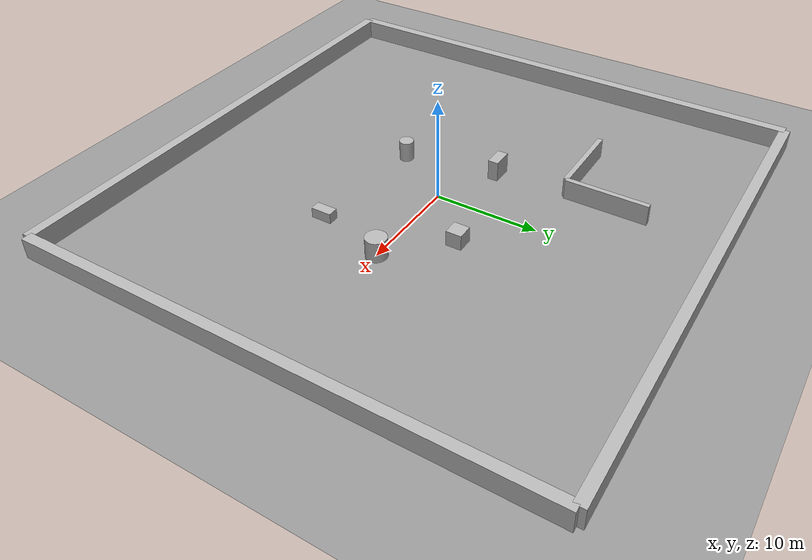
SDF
<?xml version="1.0" ?>
<sdf version="1.8">
  <world name="lidar_big_world">

    <!-- Required Systems -->
    <plugin filename="gz-sim-physics-system" name="gz::sim::systems::Physics"/>
    <plugin filename="gz-sim-sensors-system" name="gz::sim::systems::Sensors"/>
    <plugin filename="gz-sim-user-commands-system" name="gz::sim::systems::UserCommands"/>
    <plugin filename="gz-sim-scene-broadcaster-system" name="gz::sim::systems::SceneBroadcaster"/>

    <!-- Sun -->
    <light name="sun" type="directional">
      <cast_shadows>true</cast_shadows>
      <pose>0 0 20 0 0 0</pose>
      <diffuse>1 1 1 1</diffuse>
      <direction>-0.3 0.2 -1</direction>
    </light>

    <!-- Ground -->
    <model name="ground_plane">
      <static>true</static>
      <link name="link">
        <collision name="collision">
          <geometry>
            <plane>
              <normal>0 0 1</normal>
              <size>200 200</size>
            </plane>
          </geometry>
        </collision>
        <visual name="visual">
          <geometry>
            <plane>
              <normal>0 0 1</normal>
              <size>200 200</size>
            </plane>
          </geometry>
          <material>
            <ambient>0.6 0.6 0.6 1</ambient>
            <diffuse>0.6 0.6 0.6 1</diffuse>
          </material>
        </visual>
      </link>
    </model>

    <!-- ================== BOUNDARY WALLS ================== -->

    <!-- North Wall -->
    <model name="wall_north">
      <static>true</static>
      <pose>0 25 1 0 0 0</pose>
      <link name="link">
        <collision name="collision">
          <geometry><box><size>50 1 2</size></box></geometry>
        </collision>
        <visual name="visual">
          <geometry><box><size>50 1 2</size></box></geometry>
        </visual>
      </link>
    </model>

    <!-- South Wall -->
    <model name="wall_south">
      <static>true</static>
      <pose>0 -25 1 0 0 0</pose>
      <link name="link">
        <collision name="collision">
          <geometry><box><size>50 1 2</size></box></geometry>
        </collision>
        <visual name="visual">
          <geometry><box><size>50 1 2</size></box></geometry>
        </visual>
      </link>
    </model>

    <!-- East Wall -->
    <model name="wall_east">
      <static>true</static>
      <pose>25 0 1 0 0 0</pose>
      <link name="link">
        <collision name="collision">
          <geometry><box><size>1 50 2</size></box></geometry>
        </collision>
        <visual name="visual">
          <geometry><box><size>1 50 2</size></box></geometry>
        </visual>
      </link>
    </model>

    <!-- West Wall -->
    <model name="wall_west">
      <static>true</static>
      <pose>-25 0 1 0 0 0</pose>
      <link name="link">
        <collision name="collision">
          <geometry><box><size>1 50 2</size></box></geometry>
        </collision>
        <visual name="visual">
          <geometry><box><size>1 50 2</size></box></geometry>
        </visual>
      </link>
    </model>

    <!-- ================== RANDOM BOX OBSTACLES ================== -->

    <model name="box1">
      <static>true</static>
      <pose>5 5 0.75 0 0 0</pose>
      <link name="link">
        <collision name="collision">
          <geometry><box><size>1.5 1.5 1.5</size></box></geometry>
        </collision>
        <visual name="visual">
          <geometry><box><size>1.5 1.5 1.5</size></box></geometry>
        </visual>
      </link>
    </model>

    <model name="box2">
      <static>true</static>
      <pose>-6 3 1 0 0 0</pose>
      <link name="link">
        <collision name="collision">
          <geometry><box><size>2 1 2</size></box></geometry>
        </collision>
        <visual name="visual">
          <geometry><box><size>2 1 2</size></box></geometry>
        </visual>
      </link>
    </model>

    <model name="box3">
      <static>true</static>
      <pose>8 -7 0.5 0 0 0</pose>
      <link name="link">
        <collision name="collision">
          <geometry><box><size>1 2 1</size></box></geometry>
        </collision>
        <visual name="visual">
          <geometry><box><size>1 2 1</size></box></geometry>
        </visual>
      </link>
    </model>

    <!-- ================== CYLINDERS ================== -->

    <model name="cylinder1">
      <static>true</static>
      <pose>-4 -6 1 0 0 0</pose>
      <link name="link">
        <collision name="collision">
          <geometry><cylinder><radius>0.7</radius><length>2</length></cylinder></geometry>
        </collision>
        <visual name="visual">
          <geometry><cylinder><radius>0.7</radius><length>2</length></cylinder></geometry>
        </visual>
      </link>
    </model>

    <model name="cylinder2">
      <static>true</static>
      <pose>10 0 1 0 0 0</pose>
      <link name="link">
        <collision name="collision">
          <geometry><cylinder><radius>1</radius><length>2</length></cylinder></geometry>
        </collision>
        <visual name="visual">
          <geometry><cylinder><radius>1</radius><length>2</length></cylinder></geometry>
        </visual>
      </link>
    </model>

    <!-- ================== SIMPLE MAZE SECTION ================== -->

    <model name="maze_wall1">
      <static>true</static>
      <pose>-10 10 1 0 0 0</pose>
      <link name="link">
        <collision name="collision">
          <geometry><box><size>8 0.5 2</size></box></geometry>
        </collision>
        <visual name="visual">
          <geometry><box><size>8 0.5 2</size></box></geometry>
        </visual>
      </link>
    </model>

    <model name="maze_wall2">
      <static>true</static>
      <pose>-6 14 1 0 0 1.57</pose>
      <link name="link">
        <collision name="collision">
          <geometry><box><size>8 0.5 2</size></box></geometry>
        </collision>
        <visual name="visual">
          <geometry><box><size>8 0.5 2</size></box></geometry>
        </visual>
      </link>
    </model>

  </world>
</sdf>
